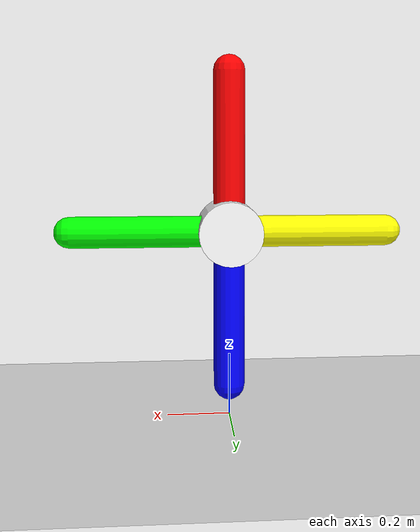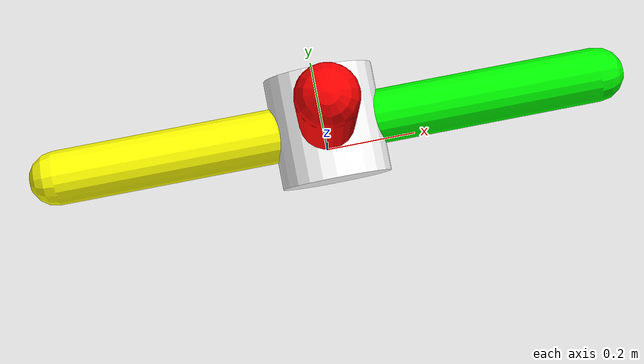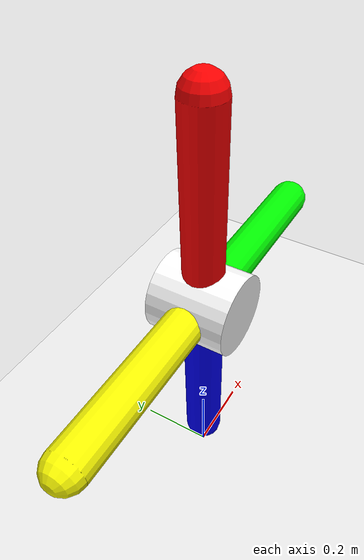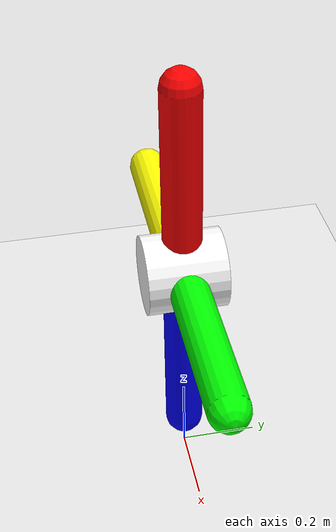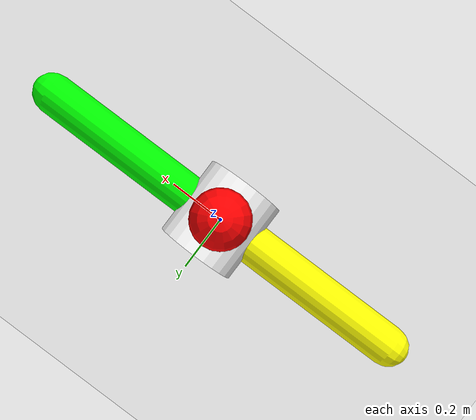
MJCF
<mujoco>
  <option gravity="0 0 -9.81"/>

  <visual>
    <headlight diffuse="0.6 0.6 0.6"  ambient="0.3 0.3 0.3" specular="0 0 0"/>
    <rgba haze="0.15 0.25 0.35 1"/>
  </visual>

  <default>
    <geom friction="2.0 0.005 0.0001"/>
  </default>

  <worldbody>
    <geom type="plane" size="10 5 0.1" rgba=".9 .9 .9 1"/>

    <body pos="0 0 0.6" name="hub">
      <joint name="root_x" type="slide" axis="1 0 0" damping="0"/>
      <joint name="root_z" type="slide" axis="0 0 1" damping="0"/>
      <joint name="root_y" type="hinge" axis="0 1 0" damping="0"/>

      <geom type="cylinder" size="0.1 0.05" fromto="0 0.1 0 0 -0.1 0" rgba="1 1 1 1"/>

      <body pos="0 0 0" euler="0 0 0">
        <joint name="hinge1" type="hinge" axis="0 1 0" range="-90 90" limited="true" damping="0.1"/>
        <geom type="capsule" size="0.05" fromto="0 0 0 0 0 0.5" rgba="1 0 0 1"/>
      </body>

      <body pos="0 0 0" euler="0 90 0">
        <joint name="hinge2" type="hinge" axis="0 1 0" range="-90 90" limited="true" damping="0.1"/>
        <geom type="capsule" size="0.05" fromto="0 0 0 0 0 0.5" rgba="0 1 0 1"/>
      </body>

      <body pos="0 0 0" euler="0 180 0">
        <joint name="hinge3" type="hinge" axis="0 1 0" range="-90 90" limited="true" damping="0.1"/>
        <geom type="capsule" size="0.05" fromto="0 0 0 0 0 0.5" rgba="0 0 1 1"/>
      </body>

      <body pos="0 0 0" euler="0 270 0">
        <joint name="hinge4" type="hinge" axis="0 1 0" range="-90 90" limited="true" damping="0.1"/>
        <geom type="capsule" size="0.05" fromto="0 0 0 0 0 0.5" rgba="1 1 0 1"/>
      </body>
    </body>
  </worldbody>

  <actuator>
    <motor joint="hinge1" ctrlrange="-1 1" gear="200"/>
    <motor joint="hinge2" ctrlrange="-1 1" gear="200"/>
    <motor joint="hinge3" ctrlrange="-1 1" gear="200"/>
    <motor joint="hinge4" ctrlrange="-1 1" gear="200"/>
  </actuator>
</mujoco>
